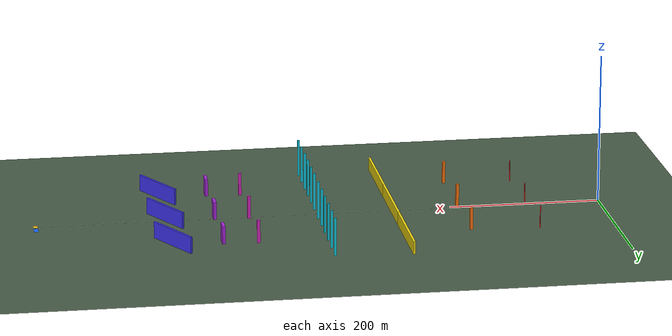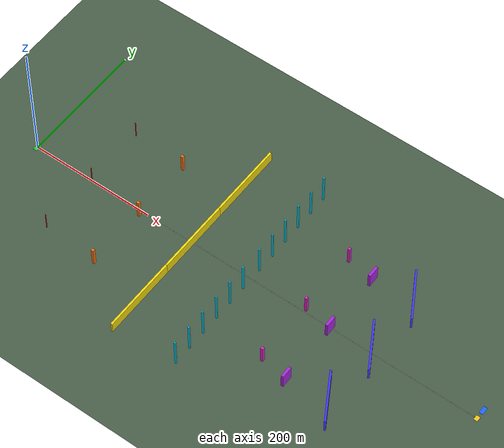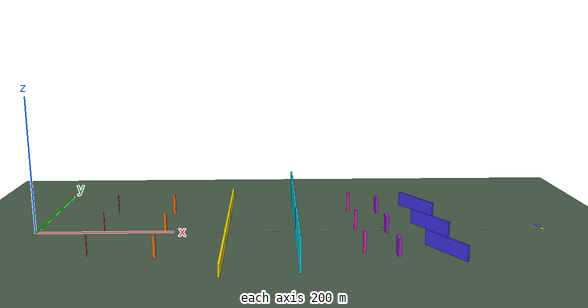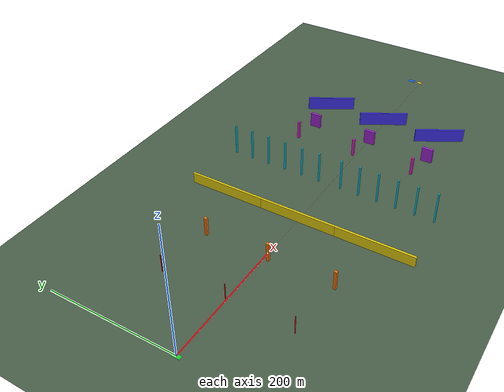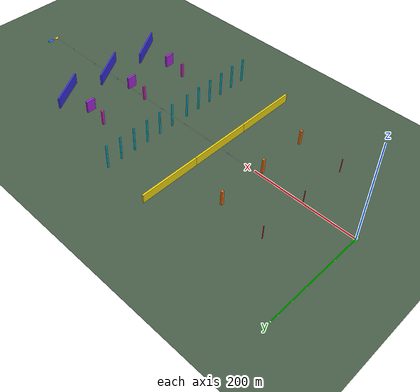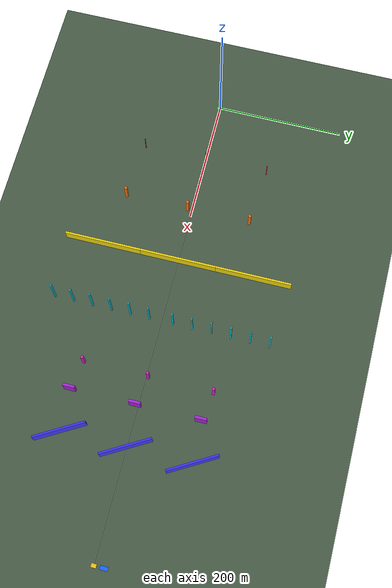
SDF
<?xml version="1.0" encoding="UTF-8"?>
<sdf version="1.9">
  <world name="optuna_course">
    <physics type="ode">
      <max_step_size>0.004</max_step_size>
      <real_time_factor>1.0</real_time_factor>
      <real_time_update_rate>250</real_time_update_rate>
    </physics>

    <gravity>0 0 -9.8</gravity>
    <magnetic_field>6e-06 2.3e-05 -4.2e-05</magnetic_field>
    <atmosphere type="adiabatic"/>

    <scene>
      <grid>true</grid>
      <ambient>0.45 0.45 0.45 1</ambient>
      <background>0.72 0.78 0.84 1</background>
      <shadows>true</shadows>
    </scene>

    <light name="sun" type="directional">
      <pose>325 0 250 0 0 0</pose>
      <cast_shadows>true</cast_shadows>
      <diffuse>0.85 0.85 0.85 1</diffuse>
      <specular>0.2 0.2 0.2 1</specular>
      <direction>-0.4 0.2 -0.9</direction>
    </light>

    <model name="ground_plane">
      <static>true</static>
      <pose>375 0 0 0 0 0</pose>
      <link name="link">
        <collision name="collision">
          <geometry>
            <plane>
              <normal>0 0 1</normal>
              <size>800 500</size>
            </plane>
          </geometry>
        </collision>
        <visual name="visual">
          <geometry>
            <plane>
              <normal>0 0 1</normal>
              <size>800 500</size>
            </plane>
          </geometry>
          <material>
            <ambient>0.22 0.28 0.22 1</ambient>
            <diffuse>0.28 0.36 0.28 1</diffuse>
            <specular>0.05 0.05 0.05 1</specular>
          </material>
        </visual>
      </link>
    </model>

    <model name="course_centerline">
      <static>true</static>
      <pose>375 0 0.03 0 0 0</pose>
      <link name="link">
        <visual name="visual">
          <geometry>
            <box><size>750 0.35 0.04</size></box>
          </geometry>
          <material>
            <ambient>0.85 0.85 0.85 1</ambient>
            <diffuse>0.85 0.85 0.85 1</diffuse>
            <emissive>0.15 0.15 0.15 1</emissive>
          </material>
        </visual>
      </link>
    </model>

    <model name="start_marker">
      <static>true</static>
      <pose>0 0 0.06 0 0 0</pose>
      <link name="link">
        <visual name="visual">
          <geometry>
            <box><size>6 12 0.1</size></box>
          </geometry>
          <material>
            <ambient>0.1 0.8 0.2 1</ambient>
            <diffuse>0.1 0.8 0.2 1</diffuse>
            <emissive>0.03 0.2 0.05 1</emissive>
          </material>
        </visual>
      </link>
    </model>

    <model name="goal_marker">
      <static>true</static>
      <pose>750 15 0.06 0 0 0</pose>
      <link name="link">
        <visual name="visual">
          <geometry>
            <box><size>6 12 0.1</size></box>
          </geometry>
          <material>
            <ambient>0.1 0.4 1.0 1</ambient>
            <diffuse>0.1 0.4 1.0 1</diffuse>
            <emissive>0.03 0.1 0.25 1</emissive>
          </material>
        </visual>
      </link>
    </model>

    <model name="turn_marker">
      <static>true</static>
      <pose>750 0 0.055 0 0 0</pose>
      <link name="link">
        <visual name="visual">
          <geometry>
            <box><size>6 8 0.08</size></box>
          </geometry>
          <material>
            <ambient>0.95 0.75 0.1 1</ambient>
            <diffuse>0.95 0.75 0.1 1</diffuse>
            <emissive>0.2 0.14 0.02 1</emissive>
          </material>
        </visual>
      </link>
    </model>

    <!-- Stage 1: sparse LiDAR target, centered on the nominal route. -->
    <model name="stage_1_thin_pole">
      <static>true</static>
      <pose>100 0 15 0 0 0</pose>
      <link name="link">
        <collision name="collision">
          <geometry><box><size>1 1 30</size></box></geometry>
        </collision>
        <visual name="visual">
          <geometry><box><size>1 1 30</size></box></geometry>
          <material>
            <ambient>0.95 0.1 0.1 1</ambient>
            <diffuse>0.95 0.1 0.1 1</diffuse>
          </material>
        </visual>
      </link>
      <link name="repeat_y_plus_100">
        <pose>0 100 0 0 0 0</pose>
        <collision name="collision">
          <geometry><box><size>1 1 30</size></box></geometry>
        </collision>
        <visual name="visual">
          <geometry><box><size>1 1 30</size></box></geometry>
          <material>
            <ambient>0.95 0.1 0.1 1</ambient>
            <diffuse>0.95 0.1 0.1 1</diffuse>
          </material>
        </visual>
      </link>
      <link name="repeat_y_minus_100">
        <pose>0 -100 0 0 0 0</pose>
        <collision name="collision">
          <geometry><box><size>1 1 30</size></box></geometry>
        </collision>
        <visual name="visual">
          <geometry><box><size>1 1 30</size></box></geometry>
          <material>
            <ambient>0.95 0.1 0.1 1</ambient>
            <diffuse>0.95 0.1 0.1 1</diffuse>
          </material>
        </visual>
      </link>
    </model>

    <!-- Stage 2: offset obstacle; right of a vehicle travelling along +X. -->
    <model name="stage_2_right_offset_tower">
      <static>true</static>
      <pose>190 -7 15 0 0 0</pose>
      <link name="link">
        <collision name="collision">
          <geometry><box><size>4 4 30</size></box></geometry>
        </collision>
        <visual name="visual">
          <geometry><box><size>4 4 30</size></box></geometry>
          <material>
            <ambient>1.0 0.45 0.05 1</ambient>
            <diffuse>1.0 0.45 0.05 1</diffuse>
          </material>
        </visual>
      </link>
      <link name="repeat_y_plus_100">
        <pose>0 100 0 0 0 0</pose>
        <collision name="collision">
          <geometry><box><size>4 4 30</size></box></geometry>
        </collision>
        <visual name="visual">
          <geometry><box><size>4 4 30</size></box></geometry>
          <material>
            <ambient>1.0 0.45 0.05 1</ambient>
            <diffuse>1.0 0.45 0.05 1</diffuse>
          </material>
        </visual>
      </link>
      <link name="repeat_y_minus_100">
        <pose>0 -100 0 0 0 0</pose>
        <collision name="collision">
          <geometry><box><size>4 4 30</size></box></geometry>
        </collision>
        <visual name="visual">
          <geometry><box><size>4 4 30</size></box></geometry>
          <material>
            <ambient>1.0 0.45 0.05 1</ambient>
            <diffuse>1.0 0.45 0.05 1</diffuse>
          </material>
        </visual>
      </link>
    </model>

    <!-- Stage 3: low and wide, intended to exercise vertical escape. -->
    <model name="stage_3_low_wide_wall">
      <static>true</static>
      <pose>280 0 8.5 0 0 0</pose>
      <link name="link">
        <collision name="collision">
          <geometry><box><size>3 120 17</size></box></geometry>
        </collision>
        <visual name="visual">
          <geometry><box><size>3 120 17</size></box></geometry>
          <material>
            <ambient>0.95 0.85 0.05 1</ambient>
            <diffuse>0.95 0.85 0.05 1</diffuse>
          </material>
        </visual>
      </link>
      <link name="repeat_y_plus_120">
        <pose>0 120 0 0 0 0</pose>
        <collision name="collision">
          <geometry><box><size>3 120 17</size></box></geometry>
        </collision>
        <visual name="visual">
          <geometry><box><size>3 120 17</size></box></geometry>
          <material>
            <ambient>0.95 0.85 0.05 1</ambient>
            <diffuse>0.95 0.85 0.05 1</diffuse>
          </material>
        </visual>
      </link>
      <link name="repeat_y_minus_120">
        <pose>0 -120 0 0 0 0</pose>
        <collision name="collision">
          <geometry><box><size>3 120 17</size></box></geometry>
        </collision>
        <visual name="visual">
          <geometry><box><size>3 120 17</size></box></geometry>
          <material>
            <ambient>0.95 0.85 0.05 1</ambient>
            <diffuse>0.95 0.85 0.05 1</diffuse>
          </material>
        </visual>
      </link>
    </model>

    <!-- Stage 4: one of every three 2 m panels, with a symmetric 35 m center gate. -->
    <model name="stage_4_slatted_gate">
      <static>true</static>
      <pose>380 0 25 0 0 0</pose>
      <link name="slatted_wall">
        <collision name="panel_01_collision">
          <pose>0 -168.5 0 0 0 0</pose>
          <geometry><box><size>3 2 50</size></box></geometry>
        </collision>
        <visual name="panel_01_visual">
          <pose>0 -168.5 0 0 0 0</pose>
          <geometry><box><size>3 2 50</size></box></geometry>
          <material>
            <ambient>0.05 0.8 0.9 1</ambient>
            <diffuse>0.05 0.8 0.9 1</diffuse>
          </material>
        </visual>
        <collision name="panel_04_collision">
          <pose>0 -138.5 0 0 0 0</pose>
          <geometry><box><size>3 2 50</size></box></geometry>
        </collision>
        <visual name="panel_04_visual">
          <pose>0 -138.5 0 0 0 0</pose>
          <geometry><box><size>3 2 50</size></box></geometry>
          <material>
            <ambient>0.05 0.8 0.9 1</ambient>
            <diffuse>0.05 0.8 0.9 1</diffuse>
          </material>
        </visual>
        <collision name="panel_07_collision">
          <pose>0 -108.5 0 0 0 0</pose>
          <geometry><box><size>3 2 50</size></box></geometry>
        </collision>
        <visual name="panel_07_visual">
          <pose>0 -108.5 0 0 0 0</pose>
          <geometry><box><size>3 2 50</size></box></geometry>
          <material>
            <ambient>0.05 0.8 0.9 1</ambient>
            <diffuse>0.05 0.8 0.9 1</diffuse>
          </material>
        </visual>
        <collision name="panel_10_collision">
          <pose>0 -78.5 0 0 0 0</pose>
          <geometry><box><size>3 2 50</size></box></geometry>
        </collision>
        <visual name="panel_10_visual">
          <pose>0 -78.5 0 0 0 0</pose>
          <geometry><box><size>3 2 50</size></box></geometry>
          <material>
            <ambient>0.05 0.8 0.9 1</ambient>
            <diffuse>0.05 0.8 0.9 1</diffuse>
          </material>
        </visual>
        <collision name="panel_13_collision">
          <pose>0 -48.5 0 0 0 0</pose>
          <geometry><box><size>3 2 50</size></box></geometry>
        </collision>
        <visual name="panel_13_visual">
          <pose>0 -48.5 0 0 0 0</pose>
          <geometry><box><size>3 2 50</size></box></geometry>
          <material>
            <ambient>0.05 0.8 0.9 1</ambient>
            <diffuse>0.05 0.8 0.9 1</diffuse>
          </material>
        </visual>
        <collision name="panel_16_collision">
          <pose>0 -18.5 0 0 0 0</pose>
          <geometry><box><size>3 2 50</size></box></geometry>
        </collision>
        <visual name="panel_16_visual">
          <pose>0 -18.5 0 0 0 0</pose>
          <geometry><box><size>3 2 50</size></box></geometry>
          <material>
            <ambient>0.05 0.8 0.9 1</ambient>
            <diffuse>0.05 0.8 0.9 1</diffuse>
          </material>
        </visual>
        <collision name="panel_19_collision">
          <pose>0 18.5 0 0 0 0</pose>
          <geometry><box><size>3 2 50</size></box></geometry>
        </collision>
        <visual name="panel_19_visual">
          <pose>0 18.5 0 0 0 0</pose>
          <geometry><box><size>3 2 50</size></box></geometry>
          <material>
            <ambient>0.05 0.8 0.9 1</ambient>
            <diffuse>0.05 0.8 0.9 1</diffuse>
          </material>
        </visual>
        <collision name="panel_22_collision">
          <pose>0 48.5 0 0 0 0</pose>
          <geometry><box><size>3 2 50</size></box></geometry>
        </collision>
        <visual name="panel_22_visual">
          <pose>0 48.5 0 0 0 0</pose>
          <geometry><box><size>3 2 50</size></box></geometry>
          <material>
            <ambient>0.05 0.8 0.9 1</ambient>
            <diffuse>0.05 0.8 0.9 1</diffuse>
          </material>
        </visual>
        <collision name="panel_25_collision">
          <pose>0 78.5 0 0 0 0</pose>
          <geometry><box><size>3 2 50</size></box></geometry>
        </collision>
        <visual name="panel_25_visual">
          <pose>0 78.5 0 0 0 0</pose>
          <geometry><box><size>3 2 50</size></box></geometry>
          <material>
            <ambient>0.05 0.8 0.9 1</ambient>
            <diffuse>0.05 0.8 0.9 1</diffuse>
          </material>
        </visual>
        <collision name="panel_28_collision">
          <pose>0 108.5 0 0 0 0</pose>
          <geometry><box><size>3 2 50</size></box></geometry>
        </collision>
        <visual name="panel_28_visual">
          <pose>0 108.5 0 0 0 0</pose>
          <geometry><box><size>3 2 50</size></box></geometry>
          <material>
            <ambient>0.05 0.8 0.9 1</ambient>
            <diffuse>0.05 0.8 0.9 1</diffuse>
          </material>
        </visual>
        <collision name="panel_31_collision">
          <pose>0 138.5 0 0 0 0</pose>
          <geometry><box><size>3 2 50</size></box></geometry>
        </collision>
        <visual name="panel_31_visual">
          <pose>0 138.5 0 0 0 0</pose>
          <geometry><box><size>3 2 50</size></box></geometry>
          <material>
            <ambient>0.05 0.8 0.9 1</ambient>
            <diffuse>0.05 0.8 0.9 1</diffuse>
          </material>
        </visual>
        <collision name="panel_34_collision">
          <pose>0 168.5 0 0 0 0</pose>
          <geometry><box><size>3 2 50</size></box></geometry>
        </collision>
        <visual name="panel_34_visual">
          <pose>0 168.5 0 0 0 0</pose>
          <geometry><box><size>3 2 50</size></box></geometry>
          <material>
            <ambient>0.05 0.8 0.9 1</ambient>
            <diffuse>0.05 0.8 0.9 1</diffuse>
          </material>
        </visual>
      </link>
    </model>

    <!-- Stage 5: consecutive targets inside overlapping 70 m LiDAR ranges. -->
    <model name="stage_5_first_obstacle">
      <static>true</static>
      <pose>470 4 15 0 0 0</pose>
      <link name="link">
        <collision name="collision">
          <geometry><box><size>4 4 30</size></box></geometry>
        </collision>
        <visual name="visual">
          <geometry><box><size>4 4 30</size></box></geometry>
          <material>
            <ambient>0.85 0.15 0.75 1</ambient>
            <diffuse>0.85 0.15 0.75 1</diffuse>
          </material>
        </visual>
      </link>
      <link name="repeat_y_plus_100">
        <pose>0 100 0 0 0 0</pose>
        <collision name="collision">
          <geometry><box><size>4 4 30</size></box></geometry>
        </collision>
        <visual name="visual">
          <geometry><box><size>4 4 30</size></box></geometry>
          <material>
            <ambient>0.85 0.15 0.75 1</ambient>
            <diffuse>0.85 0.15 0.75 1</diffuse>
          </material>
        </visual>
      </link>
      <link name="repeat_y_minus_100">
        <pose>0 -100 0 0 0 0</pose>
        <collision name="collision">
          <geometry><box><size>4 4 30</size></box></geometry>
        </collision>
        <visual name="visual">
          <geometry><box><size>4 4 30</size></box></geometry>
          <material>
            <ambient>0.85 0.15 0.75 1</ambient>
            <diffuse>0.85 0.15 0.75 1</diffuse>
          </material>
        </visual>
      </link>
    </model>

    <model name="stage_5_second_obstacle">
      <static>true</static>
      <pose>515 -4 12 0 0 0</pose>
      <link name="link">
        <collision name="collision">
          <geometry><box><size>4 18 24</size></box></geometry>
        </collision>
        <visual name="visual">
          <geometry><box><size>4 18 24</size></box></geometry>
          <material>
            <ambient>0.65 0.15 0.85 1</ambient>
            <diffuse>0.65 0.15 0.85 1</diffuse>
          </material>
        </visual>
      </link>
      <link name="repeat_y_plus_100">
        <pose>0 100 0 0 0 0</pose>
        <collision name="collision">
          <geometry><box><size>4 18 24</size></box></geometry>
        </collision>
        <visual name="visual">
          <geometry><box><size>4 18 24</size></box></geometry>
          <material>
            <ambient>0.65 0.15 0.85 1</ambient>
            <diffuse>0.65 0.15 0.85 1</diffuse>
          </material>
        </visual>
      </link>
      <link name="repeat_y_minus_100">
        <pose>0 -100 0 0 0 0</pose>
        <collision name="collision">
          <geometry><box><size>4 18 24</size></box></geometry>
        </collision>
        <visual name="visual">
          <geometry><box><size>4 18 24</size></box></geometry>
          <material>
            <ambient>0.65 0.15 0.85 1</ambient>
            <diffuse>0.65 0.15 0.85 1</diffuse>
          </material>
        </visual>
      </link>
    </model>

    <!-- Stage 6: broad wall rotated 30 degrees around the vertical axis. -->
    <model name="stage_6_angled_wall">
      <static>true</static>
      <pose>580 0 11 0 0 0.5235987756</pose>
      <link name="link">
        <collision name="collision">
          <geometry><box><size>3 80 22</size></box></geometry>
        </collision>
        <visual name="visual">
          <geometry><box><size>3 80 22</size></box></geometry>
          <material>
            <ambient>0.25 0.2 0.95 1</ambient>
            <diffuse>0.25 0.2 0.95 1</diffuse>
          </material>
        </visual>
      </link>
      <link name="repeat_y_plus_100">
        <pose>50 86.6025403784 0 0 0 0</pose>
        <collision name="collision">
          <geometry><box><size>3 80 22</size></box></geometry>
        </collision>
        <visual name="visual">
          <geometry><box><size>3 80 22</size></box></geometry>
          <material>
            <ambient>0.25 0.2 0.95 1</ambient>
            <diffuse>0.25 0.2 0.95 1</diffuse>
          </material>
        </visual>
      </link>
      <link name="repeat_y_minus_100">
        <pose>-50 -86.6025403784 0 0 0 0</pose>
        <collision name="collision">
          <geometry><box><size>3 80 22</size></box></geometry>
        </collision>
        <visual name="visual">
          <geometry><box><size>3 80 22</size></box></geometry>
          <material>
            <ambient>0.25 0.2 0.95 1</ambient>
            <diffuse>0.25 0.2 0.95 1</diffuse>
          </material>
        </visual>
      </link>
    </model>

    <spherical_coordinates>
      <surface_model>EARTH_WGS84</surface_model>
      <world_frame_orientation>ENU</world_frame_orientation>
      <latitude_deg>47.397971057728974</latitude_deg>
      <longitude_deg>8.546163739800146</longitude_deg>
      <elevation>0</elevation>
    </spherical_coordinates>
  </world>
</sdf>
